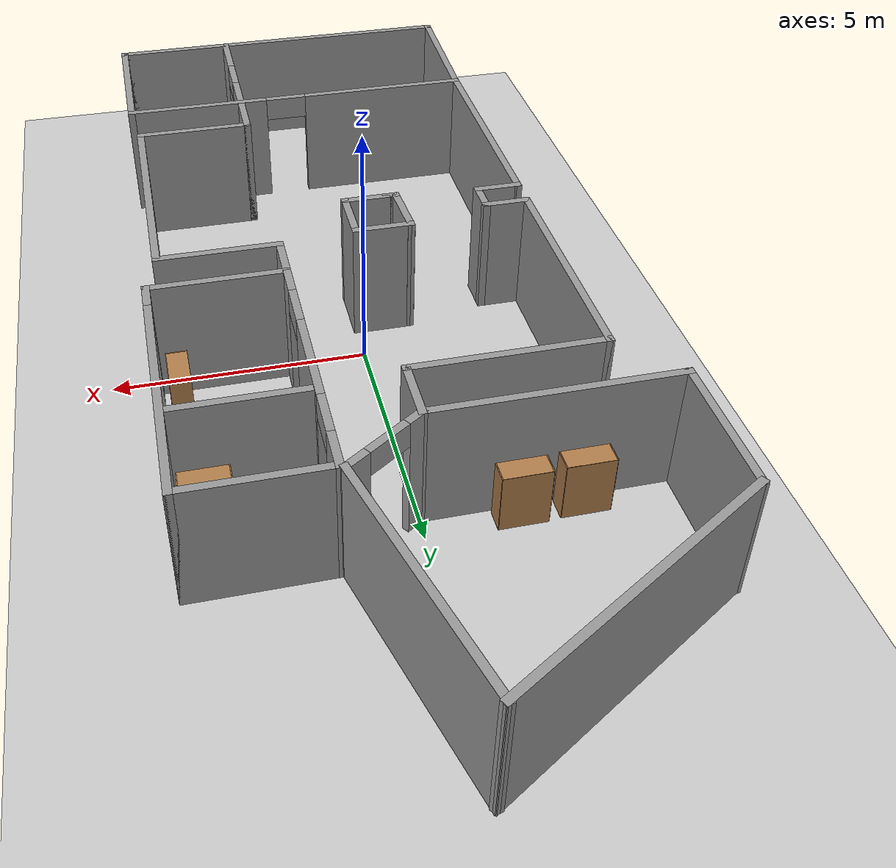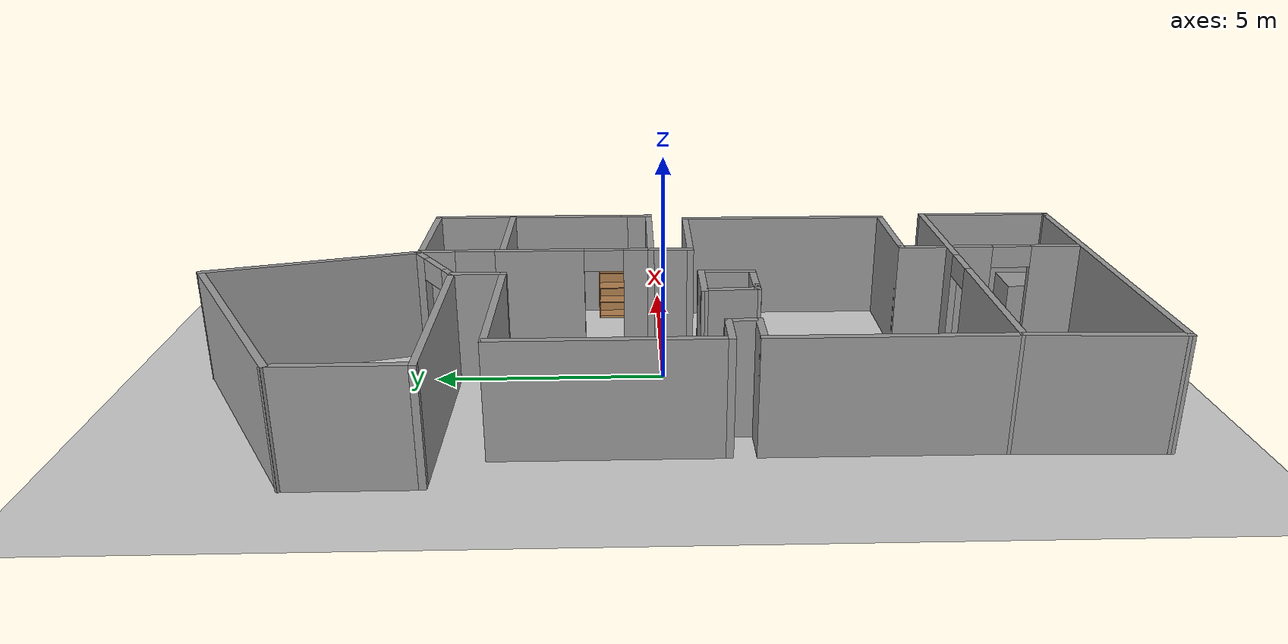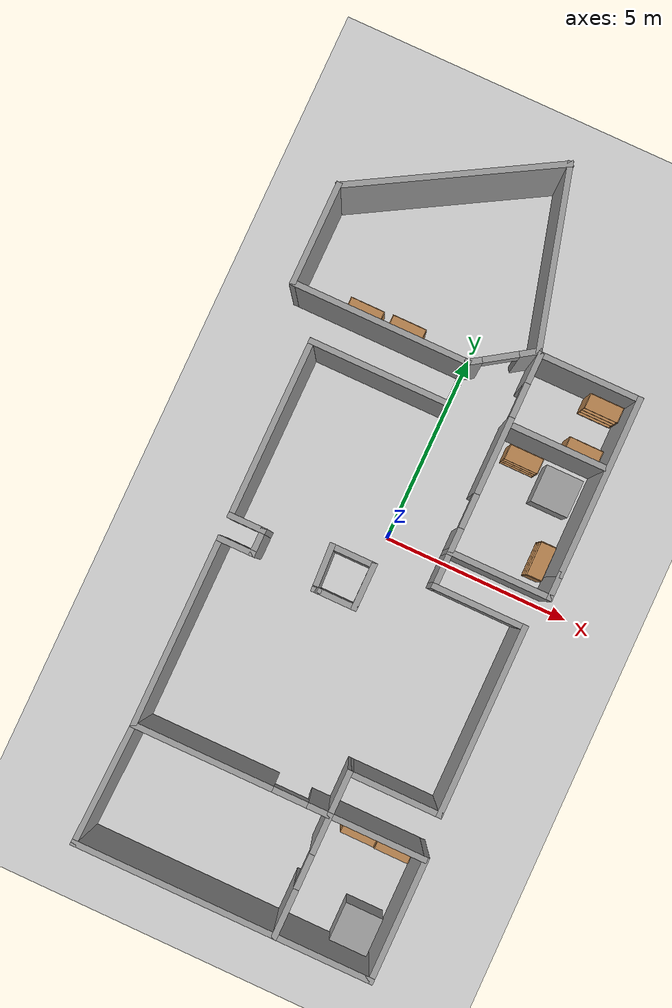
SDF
<sdf version="1.7">
 <world name="default">
  <light name="sun" type="directional">
   <pose>0 0 10 0 -0 0</pose>
   <diffuse>0.8 0.8 0.8 1</diffuse>
   <specular>0.2 0.2 0.2 1</specular>
   <attenuation>
    <range>1000</range>
    <constant>0.9</constant>
    <linear>0.01</linear>
    <quadratic>0.001</quadratic>
   </attenuation>
   <direction>-0.5 0.1 -0.9</direction>
   <spot><inner_angle>0</inner_angle><outer_angle>0</outer_angle><falloff>0</falloff></spot>
  </light>
  <model name="ground_plane">
   <static>1</static>
   <link name="link">
    <collision name="collision">
     <geometry><plane><normal>0 0 1</normal><size>100 100</size></plane></geometry>
     <surface>
      <contact><collide_bitmask>65535</collide_bitmask></contact>
      <friction><ode><mu>100</mu><mu2>50</mu2></ode></friction>
     </surface>
    </collision>
    <visual name="visual">
     <cast_shadows>0</cast_shadows>
     <geometry><plane><normal>0 0 1</normal><size>100 100</size></plane></geometry>
     <material>
      <script><uri>file://media/materials/scripts/gazebo.material</uri><name>Gazebo/Grey</name></script>
     </material>
    </visual>
   </link>
  </model>
  <gravity>0 0 -9.8</gravity>
  <magnetic_field>6e-06 2.3e-05 -4.2e-05</magnetic_field>
  <atmosphere type="adiabatic"/>
  <physics type="ode">
   <max_step_size>0.001</max_step_size>
   <real_time_factor>1</real_time_factor>
   <real_time_update_rate>1000</real_time_update_rate>
  </physics>
  <scene><ambient>0.4 0.4 0.4 1</ambient><background>0.7 0.7 0.7 1</background><shadows>1</shadows></scene>
  <audio><device>default</device></audio>
  <spherical_coordinates>
   <surface_model>EARTH_WGS84</surface_model>
   <latitude_deg>0</latitude_deg>
   <longitude_deg>0</longitude_deg>
   <elevation>0</elevation>
   <heading_deg>0</heading_deg>
  </spherical_coordinates>
  <model name="last_apartment_0">
   <pose>-0.265494 0.12837 0 0 -0 0</pose>
   <link name="Wall_44">
    <collision name="Wall_44_Collision">
     <geometry><box><size>7.75 0.15 2.5</size></box></geometry>
     <pose>0 0 1.25 0 -0 0</pose>
    </collision>
    <visual name="Wall_44_Visual">
     <pose>0 0 1.25 0 -0 0</pose>
     <geometry><box><size>7.75 0.15 2.5</size></box></geometry>
     <material>
      <script><uri>file://media/materials/scripts/gazebo.material</uri><name>Gazebo/Grey</name></script>
      <ambient>1 1 1 1</ambient>
     </material>
     <meta><layer>0</layer></meta>
    </visual>
    <pose>0.357461 -9.83754 0 0 -0 0</pose>
   </link>
   <link name="Wall_45">
    <collision name="Wall_45_Collision">
     <geometry><box><size>0.25 0.15 2.5</size></box></geometry>
     <pose>0 0 1.25 0 -0 0</pose>
    </collision>
    <visual name="Wall_45_Visual">
     <pose>0 0 1.25 0 -0 0</pose>
     <geometry><box><size>0.25 0.15 2.5</size></box></geometry>
     <material>
      <script><uri>file://media/materials/scripts/gazebo.material</uri><name>Gazebo/Grey</name></script>
      <ambient>1 1 1 1</ambient>
     </material>
     <meta><layer>0</layer></meta>
    </visual>
    <pose>4.20746 -9.83754 0 0 -0 0</pose>
   </link>
   <link name="Wall_46">
    <collision name="Wall_46_Collision">
     <geometry><box><size>3.25 0.15 2.5</size></box></geometry>
     <pose>0 0 1.25 0 -0 0</pose>
    </collision>
    <visual name="Wall_46_Visual">
     <pose>0 0 1.25 0 -0 0</pose>
     <geometry><box><size>3.25 0.15 2.5</size></box></geometry>
     <material>
      <script><uri>file://media/materials/scripts/gazebo.material</uri><name>Gazebo/Grey</name></script>
      <ambient>1 1 1 1</ambient>
     </material>
     <meta><layer>0</layer></meta>
    </visual>
    <pose>4.25746 -8.28754 0 0 -0 1.5708</pose>
   </link>
   <link name="Wall_47">
    <pose>0.457461 -6.73754 0 0 -0 3.14159</pose>
    <visual name="Wall_47_Visual_0">
     <pose>-2.302 0 1.25 0 -0 0</pose>
     <geometry><box><size>3.14601 0.15 2.5</size></box></geometry>
     <material>
      <script><uri>file://media/materials/scripts/gazebo.material</uri><name>Gazebo/Grey</name></script>
      <ambient>1 1 1 1</ambient>
     </material>
     <meta><layer>0</layer></meta>
    </visual>
    <collision name="Wall_47_Collision_0">
     <geometry><box><size>3.14601 0.15 2.5</size></box></geometry>
     <pose>-2.302 0 1.25 0 -0 0</pose>
    </collision>
    <visual name="Wall_47_Visual_1">
     <pose>2.023 0 1.25 0 -0 0</pose>
     <geometry><box><size>3.70399 0.15 2.5</size></box></geometry>
     <material>
      <script><uri>file://media/materials/scripts/gazebo.material</uri><name>Gazebo/Grey</name></script>
      <ambient>1 1 1 1</ambient>
     </material>
     <meta><layer>0</layer></meta>
    </visual>
    <collision name="Wall_47_Collision_1">
     <geometry><box><size>3.70399 0.15 2.5</size></box></geometry>
     <pose>2.023 0 1.25 0 -0 0</pose>
    </collision>
    <visual name="Wall_47_Visual_2">
     <pose>-0.278993 0 2.25 0 -0 0</pose>
     <geometry><box><size>0.9 0.15 0.5</size></box></geometry>
     <material>
      <script><uri>file://media/materials/scripts/gazebo.material</uri><name>Gazebo/Grey</name></script>
      <ambient>1 1 1 1</ambient>
     </material>
     <meta><layer>0</layer></meta>
    </visual>
    <collision name="Wall_47_Collision_2">
     <geometry><box><size>0.9 0.15 0.5</size></box></geometry>
     <pose>-0.278993 0 2.25 0 -0 0</pose>
    </collision>
   </link>
   <link name="Wall_48">
    <collision name="Wall_48_Collision">
     <geometry><box><size>3.25161 0.15 2.5</size></box></geometry>
     <pose>0 0 1.25 0 -0 0</pose>
    </collision>
    <visual name="Wall_48_Visual">
     <pose>0 0 1.25 0 -0 0</pose>
     <geometry><box><size>3.25161 0.15 2.5</size></box></geometry>
     <material>
      <script><uri>file://media/materials/scripts/gazebo.material</uri><name>Gazebo/Grey</name></script>
      <ambient>1 1 1 1</ambient>
     </material>
     <meta><layer>0</layer></meta>
    </visual>
    <pose>-3.39254 -8.28754 0 0 -0 -1.60304</pose>
   </link>
   <link name="Wall_50">
    <pose>1.76999 -8.28949 0 0 -0 -1.5708</pose>
    <visual name="Wall_50_Visual_0">
     <pose>-1.0893 0 1.25 0 -0 0</pose>
     <geometry><box><size>1.07141 0.15 2.5</size></box></geometry>
     <material>
      <script><uri>file://media/materials/scripts/gazebo.material</uri><name>Gazebo/Grey</name></script>
      <ambient>1 1 1 1</ambient>
     </material>
     <meta><layer>0</layer></meta>
    </visual>
    <collision name="Wall_50_Collision_0">
     <geometry><box><size>1.07141 0.15 2.5</size></box></geometry>
     <pose>-1.0893 0 1.25 0 -0 0</pose>
    </collision>
    <visual name="Wall_50_Visual_1">
     <pose>0.985703 0 1.25 0 -0 0</pose>
     <geometry><box><size>1.27859 0.15 2.5</size></box></geometry>
     <material>
      <script><uri>file://media/materials/scripts/gazebo.material</uri><name>Gazebo/Grey</name></script>
      <ambient>1 1 1 1</ambient>
     </material>
     <meta><layer>0</layer></meta>
    </visual>
    <collision name="Wall_50_Collision_1">
     <geometry><box><size>1.27859 0.15 2.5</size></box></geometry>
     <pose>0.985703 0 1.25 0 -0 0</pose>
    </collision>
    <visual name="Wall_50_Visual_2">
     <pose>-0.103594 0 2.25 0 -0 0</pose>
     <geometry><box><size>0.9 0.15 0.5</size></box></geometry>
     <material>
      <script><uri>file://media/materials/scripts/gazebo.material</uri><name>Gazebo/Grey</name></script>
      <ambient>1 1 1 1</ambient>
     </material>
     <meta><layer>0</layer></meta>
    </visual>
    <collision name="Wall_50_Collision_2">
     <geometry><box><size>0.9 0.15 0.5</size></box></geometry>
     <pose>-0.103594 0 2.25 0 -0 0</pose>
    </collision>
   </link>
   <link name="Wall_52">
    <collision name="Wall_52_Collision">
     <geometry><box><size>1.25 0.15 2.5</size></box></geometry>
     <pose>0 0 1.25 0 -0 0</pose>
    </collision>
    <visual name="Wall_52_Visual">
     <pose>0 0 1.25 0 -0 0</pose>
     <geometry><box><size>1.25 0.15 2.5</size></box></geometry>
     <material>
      <script><uri>file://media/materials/scripts/gazebo.material</uri><name>Gazebo/Grey</name></script>
      <ambient>1 1 1 1</ambient>
     </material>
     <meta><layer>0</layer></meta>
    </visual>
    <pose>1.76999 -6.18949 0 0 -0 1.5708</pose>
   </link>
   <link name="Wall_53">
    <collision name="Wall_53_Collision">
     <geometry><box><size>2.5 0.15 2.5</size></box></geometry>
     <pose>0 0 1.25 0 -0 0</pose>
    </collision>
    <visual name="Wall_53_Visual">
     <pose>0 0 1.25 0 -0 0</pose>
     <geometry><box><size>2.5 0.15 2.5</size></box></geometry>
     <material>
      <script><uri>file://media/materials/scripts/gazebo.material</uri><name>Gazebo/Grey</name></script>
      <ambient>1 1 1 1</ambient>
     </material>
     <meta><layer>0</layer></meta>
    </visual>
    <pose>2.94499 -5.63949 0 0 -0 0</pose>
   </link>
   <link name="Wall_54">
    <collision name="Wall_54_Collision">
     <geometry><box><size>5 0.15 2.5</size></box></geometry>
     <pose>0 0 1.25 0 -0 0</pose>
    </collision>
    <visual name="Wall_54_Visual">
     <pose>0 0 1.25 0 -0 0</pose>
     <geometry><box><size>5 0.15 2.5</size></box></geometry>
     <material>
      <script><uri>file://media/materials/scripts/gazebo.material</uri><name>Gazebo/Grey</name></script>
      <ambient>1 1 1 1</ambient>
     </material>
     <meta><layer>0</layer></meta>
    </visual>
    <pose>4.11999 -3.21449 0 0 -0 1.5708</pose>
   </link>
   <link name="Wall_55">
    <collision name="Wall_55_Collision">
     <geometry><box><size>2.5 0.15 2.5</size></box></geometry>
     <pose>0 0 1.25 0 -0 0</pose>
    </collision>
    <visual name="Wall_55_Visual">
     <pose>0 0 1.25 0 -0 0</pose>
     <geometry><box><size>2.5 0.15 2.5</size></box></geometry>
     <material>
      <script><uri>file://media/materials/scripts/gazebo.material</uri><name>Gazebo/Grey</name></script>
      <ambient>1 1 1 1</ambient>
     </material>
     <meta><layer>0</layer></meta>
    </visual>
    <pose>2.94499 -0.789487 0 0 -0 3.14159</pose>
   </link>
   <link name="Wall_56">
    <pose>1.76999 2.26051 0 0 -0 1.5708</pose>
    <visual name="Wall_56_Visual_0">
     <pose>-2.32623 0 1.25 0 -0 0</pose>
     <geometry><box><size>1.59753 0.15 2.5</size></box></geometry>
     <material>
      <script><uri>file://media/materials/scripts/gazebo.material</uri><name>Gazebo/Grey</name></script>
      <ambient>1 1 1 1</ambient>
     </material>
     <meta><layer>0</layer></meta>
    </visual>
    <collision name="Wall_56_Collision_0">
     <geometry><box><size>1.59753 0.15 2.5</size></box></geometry>
     <pose>-2.32623 0 1.25 0 -0 0</pose>
    </collision>
    <visual name="Wall_56_Visual_1">
     <pose>0.380475 0 1.25 0 -0 0</pose>
     <geometry><box><size>2.01589 0.15 2.5</size></box></geometry>
     <material>
      <script><uri>file://media/materials/scripts/gazebo.material</uri><name>Gazebo/Grey</name></script>
      <ambient>1 1 1 1</ambient>
     </material>
     <meta><layer>0</layer></meta>
    </visual>
    <collision name="Wall_56_Collision_1">
     <geometry><box><size>2.01589 0.15 2.5</size></box></geometry>
     <pose>0.380475 0 1.25 0 -0 0</pose>
    </collision>
    <visual name="Wall_56_Visual_2">
     <pose>2.70671 0 1.25 0 -0 0</pose>
     <geometry><box><size>0.836582 0.15 2.5</size></box></geometry>
     <material>
      <script><uri>file://media/materials/scripts/gazebo.material</uri><name>Gazebo/Grey</name></script>
      <ambient>1 1 1 1</ambient>
     </material>
     <meta><layer>0</layer></meta>
    </visual>
    <collision name="Wall_56_Collision_2">
     <geometry><box><size>0.836582 0.15 2.5</size></box></geometry>
     <pose>2.70671 0 1.25 0 -0 0</pose>
    </collision>
    <visual name="Wall_56_Visual_3">
     <pose>-1.07747 0 2.25 0 -0 0</pose>
     <geometry><box><size>0.9 0.15 0.5</size></box></geometry>
     <material>
      <script><uri>file://media/materials/scripts/gazebo.material</uri><name>Gazebo/Grey</name></script>
      <ambient>1 1 1 1</ambient>
     </material>
     <meta><layer>0</layer></meta>
    </visual>
    <collision name="Wall_56_Collision_3">
     <geometry><box><size>0.9 0.15 0.5</size></box></geometry>
     <pose>-1.07747 0 2.25 0 -0 0</pose>
    </collision>
    <visual name="Wall_56_Visual_4">
     <pose>1.83842 0 2.25 0 -0 0</pose>
     <geometry><box><size>0.9 0.15 0.5</size></box></geometry>
     <material>
      <script><uri>file://media/materials/scripts/gazebo.material</uri><name>Gazebo/Grey</name></script>
      <ambient>1 1 1 1</ambient>
     </material>
     <meta><layer>0</layer></meta>
    </visual>
    <collision name="Wall_56_Collision_4">
     <geometry><box><size>0.9 0.15 0.5</size></box></geometry>
     <pose>1.83842 0 2.25 0 -0 0</pose>
    </collision>
   </link>
   <link name="Wall_57">
    <collision name="Wall_57_Collision">
     <geometry><box><size>2.75 0.15 2.5</size></box></geometry>
     <pose>0 0 1.25 0 -0 0</pose>
    </collision>
    <visual name="Wall_57_Visual">
     <pose>0 0 1.25 0 -0 0</pose>
     <geometry><box><size>2.75 0.15 2.5</size></box></geometry>
     <material>
      <script><uri>file://media/materials/scripts/gazebo.material</uri><name>Gazebo/Grey</name></script>
      <ambient>1 1 1 1</ambient>
     </material>
     <meta><layer>0</layer></meta>
    </visual>
    <pose>3.06999 5.31051 0 0 -0 0</pose>
   </link>
   <link name="Wall_58">
    <collision name="Wall_58_Collision">
     <geometry><box><size>4.75 0.15 2.5</size></box></geometry>
     <pose>0 0 1.25 0 -0 0</pose>
    </collision>
    <visual name="Wall_58_Visual">
     <pose>0 0 1.25 0 -0 0</pose>
     <geometry><box><size>4.75 0.15 2.5</size></box></geometry>
     <material>
      <script><uri>file://media/materials/scripts/gazebo.material</uri><name>Gazebo/Grey</name></script>
      <ambient>1 1 1 1</ambient>
     </material>
     <meta><layer>0</layer></meta>
    </visual>
    <pose>4.36999 3.01051 0 0 -0 -1.5708</pose>
   </link>
   <link name="Wall_59">
    <collision name="Wall_59_Collision">
     <geometry><box><size>0.75 0.15 2.5</size></box></geometry>
     <pose>0 0 1.25 0 -0 0</pose>
    </collision>
    <visual name="Wall_59_Visual">
     <pose>0 0 1.25 0 -0 0</pose>
     <geometry><box><size>0.75 0.15 2.5</size></box></geometry>
     <material>
      <script><uri>file://media/materials/scripts/gazebo.material</uri><name>Gazebo/Grey</name></script>
      <ambient>1 1 1 1</ambient>
     </material>
     <meta><layer>0</layer></meta>
    </visual>
    <pose>4.36999 0.410513 0 0 -0 -1.5708</pose>
   </link>
   <link name="Wall_60">
    <collision name="Wall_60_Collision">
     <geometry><box><size>2.75 0.15 2.5</size></box></geometry>
     <pose>0 0 1.25 0 -0 0</pose>
    </collision>
    <visual name="Wall_60_Visual">
     <pose>0 0 1.25 0 -0 0</pose>
     <geometry><box><size>2.75 0.15 2.5</size></box></geometry>
     <material>
      <script><uri>file://media/materials/scripts/gazebo.material</uri><name>Gazebo/Grey</name></script>
      <ambient>1 1 1 1</ambient>
     </material>
     <meta><layer>0</layer></meta>
    </visual>
    <pose>3.06999 0.110513 0 0 -0 3.14159</pose>
   </link>
   <link name="Wall_62">
    <collision name="Wall_62_Collision">
     <geometry><box><size>2.5 0.15 2.5</size></box></geometry>
     <pose>0 0 1.25 0 -0 0</pose>
    </collision>
    <visual name="Wall_62_Visual">
     <pose>0 0 1.25 0 -0 0</pose>
     <geometry><box><size>2.5 0.15 2.5</size></box></geometry>
     <material>
      <script><uri>file://media/materials/scripts/gazebo.material</uri><name>Gazebo/Grey</name></script>
      <ambient>1 1 1 1</ambient>
     </material>
     <meta><layer>0</layer></meta>
    </visual>
    <pose>3.09973 3.47642 0 0 -0 3.14159</pose>
   </link>
   <link name="Wall_64">
    <collision name="Wall_64_Collision">
     <geometry><box><size>5 0.15 2.5</size></box></geometry>
     <pose>0 0 1.25 0 -0 0</pose>
    </collision>
    <visual name="Wall_64_Visual">
     <pose>0 0 1.25 0 -0 0</pose>
     <geometry><box><size>5 0.15 2.5</size></box></geometry>
     <material>
      <script><uri>file://media/materials/scripts/gazebo.material</uri><name>Gazebo/Grey</name></script>
      <ambient>1 1 1 1</ambient>
     </material>
     <meta><layer>0</layer></meta>
    </visual>
    <pose>-3.34254 -4.31254 0 0 -0 1.5708</pose>
   </link>
   <link name="Wall_65">
    <collision name="Wall_65_Collision">
     <geometry><box><size>1 0.15 2.5</size></box></geometry>
     <pose>0 0 1.25 0 -0 0</pose>
    </collision>
    <visual name="Wall_65_Visual">
     <pose>0 0 1.25 0 -0 0</pose>
     <geometry><box><size>1 0.15 2.5</size></box></geometry>
     <material>
      <script><uri>file://media/materials/scripts/gazebo.material</uri><name>Gazebo/Grey</name></script>
      <ambient>1 1 1 1</ambient>
     </material>
     <meta><layer>0</layer></meta>
    </visual>
    <pose>-2.91754 -1.88754 0 0 -0 0</pose>
   </link>
   <link name="Wall_66">
    <collision name="Wall_66_Collision">
     <geometry><box><size>0.75 0.15 2.5</size></box></geometry>
     <pose>0 0 1.25 0 -0 0</pose>
    </collision>
    <visual name="Wall_66_Visual">
     <pose>0 0 1.25 0 -0 0</pose>
     <geometry><box><size>0.75 0.15 2.5</size></box></geometry>
     <material>
      <script><uri>file://media/materials/scripts/gazebo.material</uri><name>Gazebo/Grey</name></script>
      <ambient>1 1 1 1</ambient>
     </material>
     <meta><layer>0</layer></meta>
    </visual>
    <pose>-2.49254 -1.58754 0 0 -0 1.5708</pose>
   </link>
   <link name="Wall_67">
    <collision name="Wall_67_Collision">
     <geometry><box><size>1 0.15 2.5</size></box></geometry>
     <pose>0 0 1.25 0 -0 0</pose>
    </collision>
    <visual name="Wall_67_Visual">
     <pose>0 0 1.25 0 -0 0</pose>
     <geometry><box><size>1 0.15 2.5</size></box></geometry>
     <material>
      <script><uri>file://media/materials/scripts/gazebo.material</uri><name>Gazebo/Grey</name></script>
      <ambient>1 1 1 1</ambient>
     </material>
     <meta><layer>0</layer></meta>
    </visual>
    <pose>-2.91754 -1.28754 0 0 -0 3.14159</pose>
   </link>
   <link name="Wall_68">
    <collision name="Wall_68_Collision">
     <geometry><box><size>4.75 0.15 2.5</size></box></geometry>
     <pose>0 0 1.25 0 -0 0</pose>
    </collision>
    <visual name="Wall_68_Visual">
     <pose>0 0 1.25 0 -0 0</pose>
     <geometry><box><size>4.75 0.15 2.5</size></box></geometry>
     <material>
      <script><uri>file://media/materials/scripts/gazebo.material</uri><name>Gazebo/Grey</name></script>
      <ambient>1 1 1 1</ambient>
     </material>
     <meta><layer>0</layer></meta>
    </visual>
    <pose>-3.34254 1.01246 0 0 -0 1.5708</pose>
   </link>
   <link name="Wall_69">
    <collision name="Wall_69_Collision">
     <geometry><box><size>3.75 0.15 2.5</size></box></geometry>
     <pose>0 0 1.25 0 -0 0</pose>
    </collision>
    <visual name="Wall_69_Visual">
     <pose>0 0 1.25 0 -0 0</pose>
     <geometry><box><size>3.75 0.15 2.5</size></box></geometry>
     <material>
      <script><uri>file://media/materials/scripts/gazebo.material</uri><name>Gazebo/Grey</name></script>
      <ambient>1 1 1 1</ambient>
     </material>
     <meta><layer>0</layer></meta>
    </visual>
    <pose>-1.54254 3.31246 0 0 -0 0</pose>
   </link>
   <link name="Wall_70">
    <collision name="Wall_70_Collision">
     <geometry><box><size>1.25 0.15 2.5</size></box></geometry>
     <pose>0 0 1.25 0 -0 0</pose>
    </collision>
    <visual name="Wall_70_Visual">
     <pose>0 0 1.25 0 -0 0</pose>
     <geometry><box><size>1.25 0.15 2.5</size></box></geometry>
     <material>
      <script><uri>file://media/materials/scripts/gazebo.material</uri><name>Gazebo/Grey</name></script>
      <ambient>1 1 1 1</ambient>
     </material>
     <meta><layer>0</layer></meta>
    </visual>
    <pose>0.257461 3.86246 0 0 -0 1.5708</pose>
   </link>
   <link name="Wall_71">
    <collision name="Wall_71_Collision">
     <geometry><box><size>4.75 0.15 2.5</size></box></geometry>
     <pose>0 0 1.25 0 -0 0</pose>
    </collision>
    <visual name="Wall_71_Visual">
     <pose>0 0 1.25 0 -0 0</pose>
     <geometry><box><size>4.75 0.15 2.5</size></box></geometry>
     <material>
      <script><uri>file://media/materials/scripts/gazebo.material</uri><name>Gazebo/Grey</name></script>
      <ambient>1 1 1 1</ambient>
     </material>
     <meta><layer>0</layer></meta>
    </visual>
    <pose>-2.04254 4.41246 0 0 -0 3.14159</pose>
   </link>
   <link name="Wall_72">
    <collision name="Wall_72_Collision">
     <geometry><box><size>2.75 0.15 2.5</size></box></geometry>
     <pose>0 0 1.25 0 -0 0</pose>
    </collision>
    <visual name="Wall_72_Visual">
     <pose>0 0 1.25 0 -0 0</pose>
     <geometry><box><size>2.75 0.15 2.5</size></box></geometry>
     <material>
      <script><uri>file://media/materials/scripts/gazebo.material</uri><name>Gazebo/Grey</name></script>
      <ambient>1 1 1 1</ambient>
     </material>
     <meta><layer>0</layer></meta>
    </visual>
    <pose>-4.34254 5.71246 0 0 -0 1.5708</pose>
   </link>
   <link name="Wall_73">
    <collision name="Wall_73_Collision">
     <geometry><box><size>5.75 0.15 2.5</size></box></geometry>
     <pose>0 0 1.25 0 -0 0</pose>
    </collision>
    <visual name="Wall_73_Visual">
     <pose>0 0 1.25 0 -0 0</pose>
     <geometry><box><size>5.75 0.15 2.5</size></box></geometry>
     <material>
      <script><uri>file://media/materials/scripts/gazebo.material</uri><name>Gazebo/Grey</name></script>
      <ambient>1 1 1 1</ambient>
     </material>
     <meta><layer>0</layer></meta>
    </visual>
    <pose>-1.91767 8.41246 0 0 -0 0.523599</pose>
   </link>
   <link name="Wall_74">
    <collision name="Wall_74_Collision">
     <geometry><box><size>4.75 0.15 2.5</size></box></geometry>
     <pose>0 0 1.25 0 -0 0</pose>
    </collision>
    <visual name="Wall_74_Visual">
     <pose>0 0 1.25 0 -0 0</pose>
     <geometry><box><size>4.75 0.15 2.5</size></box></geometry>
     <material>
      <script><uri>file://media/materials/scripts/gazebo.material</uri><name>Gazebo/Grey</name></script>
      <ambient>1 1 1 1</ambient>
     </material>
     <meta><layer>0</layer></meta>
    </visual>
    <pose>1.10249 7.59084 0 0 -0 -1.309</pose>
   </link>
   <link name="Wall_76">
    <pose>0.977616 4.89084 0 0 -0 0.586335</pose>
    <visual name="Wall_76_Visual_0">
     <pose>-0.72663 0 1.25 0 -0 0</pose>
     <geometry><box><size>0.425858 0.15 2.5</size></box></geometry>
     <material>
      <script><uri>file://media/materials/scripts/gazebo.material</uri><name>Gazebo/Grey</name></script>
      <ambient>1 1 1 1</ambient>
     </material>
     <meta><layer>0</layer></meta>
    </visual>
    <collision name="Wall_76_Collision_0">
     <geometry><box><size>0.425858 0.15 2.5</size></box></geometry>
     <pose>-0.72663 0 1.25 0 -0 0</pose>
    </collision>
    <visual name="Wall_76_Visual_1">
     <pose>0.662929 0 1.25 0 -0 0</pose>
     <geometry><box><size>0.553259 0.15 2.5</size></box></geometry>
     <material>
      <script><uri>file://media/materials/scripts/gazebo.material</uri><name>Gazebo/Grey</name></script>
      <ambient>1 1 1 1</ambient>
     </material>
     <meta><layer>0</layer></meta>
    </visual>
    <collision name="Wall_76_Collision_1">
     <geometry><box><size>0.553259 0.15 2.5</size></box></geometry>
     <pose>0.662929 0 1.25 0 -0 0</pose>
    </collision>
    <visual name="Wall_76_Visual_2">
     <pose>-0.0637 0 2.25 0 -0 0</pose>
     <geometry><box><size>0.9 0.15 0.5</size></box></geometry>
     <material>
      <script><uri>file://media/materials/scripts/gazebo.material</uri><name>Gazebo/Grey</name></script>
      <ambient>1 1 1 1</ambient>
     </material>
     <meta><layer>0</layer></meta>
    </visual>
    <collision name="Wall_76_Collision_2">
     <geometry><box><size>0.9 0.15 0.5</size></box></geometry>
     <pose>-0.0637 0 2.25 0 -0 0</pose>
    </collision>
   </link>
   <link name="Wall_78">
    <collision name="Wall_78_Collision">
     <geometry><box><size>1.25 0.15 2.5</size></box></geometry>
     <pose>0 0 1.25 0 -0 0</pose>
    </collision>
    <visual name="Wall_78_Visual">
     <pose>0 0 1.25 0 -0 0</pose>
     <geometry><box><size>1.25 0.15 2.5</size></box></geometry>
     <material>
      <script><uri>file://media/materials/scripts/gazebo.material</uri><name>Gazebo/Grey</name></script>
      <ambient>1 1 1 1</ambient>
     </material>
     <meta><layer>0</layer></meta>
    </visual>
    <pose>-0.299384 -0.940352 0 0 -0 0</pose>
   </link>
   <link name="Wall_79">
    <collision name="Wall_79_Collision">
     <geometry><box><size>1.25 0.15 2.5</size></box></geometry>
     <pose>0 0 1.25 0 -0 0</pose>
    </collision>
    <visual name="Wall_79_Visual">
     <pose>0 0 1.25 0 -0 0</pose>
     <geometry><box><size>1.25 0.15 2.5</size></box></geometry>
     <material>
      <script><uri>file://media/materials/scripts/gazebo.material</uri><name>Gazebo/Grey</name></script>
      <ambient>1 1 1 1</ambient>
     </material>
     <meta><layer>0</layer></meta>
    </visual>
    <pose>0.250616 -1.49035 0 0 -0 -1.5708</pose>
   </link>
   <link name="Wall_80">
    <collision name="Wall_80_Collision">
     <geometry><box><size>1 0.15 2.5</size></box></geometry>
     <pose>0 0 1.25 0 -0 0</pose>
    </collision>
    <visual name="Wall_80_Visual">
     <pose>0 0 1.25 0 -0 0</pose>
     <geometry><box><size>1 0.15 2.5</size></box></geometry>
     <material>
      <script><uri>file://media/materials/scripts/gazebo.material</uri><name>Gazebo/Grey</name></script>
      <ambient>1 1 1 1</ambient>
     </material>
     <meta><layer>0</layer></meta>
    </visual>
    <pose>-0.174384 -2.04035 0 0 -0 3.14159</pose>
   </link>
   <link name="Wall_81">
    <collision name="Wall_81_Collision">
     <geometry><box><size>0.25 0.15 2.5</size></box></geometry>
     <pose>0 0 1.25 0 -0 0</pose>
    </collision>
    <visual name="Wall_81_Visual">
     <pose>0 0 1.25 0 -0 0</pose>
     <geometry><box><size>0.25 0.15 2.5</size></box></geometry>
     <material>
      <script><uri>file://media/materials/scripts/gazebo.material</uri><name>Gazebo/Grey</name></script>
      <ambient>1 1 1 1</ambient>
     </material>
     <meta><layer>0</layer></meta>
    </visual>
    <pose>-0.649384 -2.04035 0 0 -0 3.14159</pose>
   </link>
   <link name="Wall_82">
    <collision name="Wall_82_Collision">
     <geometry><box><size>0.25 0.15 2.5</size></box></geometry>
     <pose>0 0 1.25 0 -0 0</pose>
    </collision>
    <visual name="Wall_82_Visual">
     <pose>0 0 1.25 0 -0 0</pose>
     <geometry><box><size>0.25 0.15 2.5</size></box></geometry>
     <material>
      <script><uri>file://media/materials/scripts/gazebo.material</uri><name>Gazebo/Grey</name></script>
      <ambient>1 1 1 1</ambient>
     </material>
     <meta><layer>0</layer></meta>
    </visual>
    <pose>-0.749384 -2.04035 0 0 -0 3.14159</pose>
   </link>
   <link name="Wall_83">
    <collision name="Wall_83_Collision">
     <geometry><box><size>1.25114 0.15 2.5</size></box></geometry>
     <pose>0 0 1.25 0 -0 0</pose>
    </collision>
    <visual name="Wall_83_Visual">
     <pose>0 0 1.25 0 -0 0</pose>
     <geometry><box><size>1.25114 0.15 2.5</size></box></geometry>
     <material>
      <script><uri>file://media/materials/scripts/gazebo.material</uri><name>Gazebo/Grey</name></script>
      <ambient>1 1 1 1</ambient>
     </material>
     <meta><layer>0</layer></meta>
    </visual>
    <pose>-0.824384 -1.49035 0 0 -0 1.61622</pose>
   </link>
   <static>1</static>
  </model>
  <model name="bookshelf">
   <static>1</static>
   <link name="link">
    <inertial><mass>1</mass></inertial>
    <collision name="back">
     <pose>0 0.005 0.6 0 -0 0</pose>
     <geometry><box><size>0.9 0.01 1.2</size></box></geometry>
    </collision>
    <visual name="visual1">
     <pose>0 0.005 0.6 0 -0 0</pose>
     <geometry><box><size>0.9 0.01 1.2</size></box></geometry>
     <material>
      <script><uri>file://media/materials/scripts/gazebo.material</uri><name>Gazebo/Wood</name></script>
     </material>
    </visual>
    <collision name="left_side">
     <pose>0.45 -0.195 0.6 0 -0 0</pose>
     <geometry><box><size>0.02 0.4 1.2</size></box></geometry>
    </collision>
    <visual name="visual2">
     <pose>0.45 -0.195 0.6 0 -0 0</pose>
     <geometry><box><size>0.02 0.4 1.2</size></box></geometry>
     <material>
      <script><uri>file://media/materials/scripts/gazebo.material</uri><name>Gazebo/Wood</name></script>
     </material>
    </visual>
    <collision name="right_side">
     <pose>-0.45 -0.195 0.6 0 -0 0</pose>
     <geometry><box><size>0.02 0.4 1.2</size></box></geometry>
    </collision>
    <visual name="visual3">
     <pose>-0.45 -0.195 0.6 0 -0 0</pose>
     <geometry><box><size>0.02 0.4 1.2</size></box></geometry>
     <material>
      <script><uri>file://media/materials/scripts/gazebo.material</uri><name>Gazebo/Wood</name></script>
     </material>
    </visual>
    <collision name="bottom">
     <pose>0 -0.195 0.03 0 -0 0</pose>
     <geometry><box><size>0.88 0.4 0.06</size></box></geometry>
    </collision>
    <visual name="visual4">
     <pose>0 -0.195 0.03 0 -0 0</pose>
     <geometry><box><size>0.88 0.4 0.06</size></box></geometry>
     <material>
      <script><uri>file://media/materials/scripts/gazebo.material</uri><name>Gazebo/Wood</name></script>
     </material>
    </visual>
    <collision name="top">
     <pose>0 -0.195 1.19 0 -0 0</pose>
     <geometry><box><size>0.88 0.4 0.02</size></box></geometry>
    </collision>
    <visual name="visual5">
     <pose>0 -0.195 1.19 0 -0 0</pose>
     <geometry><box><size>0.88 0.4 0.02</size></box></geometry>
     <material>
      <script><uri>file://media/materials/scripts/gazebo.material</uri><name>Gazebo/Wood</name></script>
     </material>
    </visual>
    <collision name="low_shelf">
     <pose>0 -0.195 0.43 0 -0 0</pose>
     <geometry><box><size>0.88 0.4 0.02</size></box></geometry>
    </collision>
    <visual name="visual6">
     <pose>0 -0.195 0.43 0 -0 0</pose>
     <geometry><box><size>0.88 0.4 0.02</size></box></geometry>
     <material>
      <script><uri>file://media/materials/scripts/gazebo.material</uri><name>Gazebo/Wood</name></script>
     </material>
    </visual>
    <collision name="high_shelf">
     <pose>0 -0.195 0.8 0 -0 0</pose>
     <geometry><box><size>0.88 0.4 0.02</size></box></geometry>
    </collision>
    <visual name="visual7">
     <pose>0 -0.195 0.8 0 -0 0</pose>
     <geometry><box><size>0.88 0.4 0.02</size></box></geometry>
     <material>
      <script><uri>file://media/materials/scripts/gazebo.material</uri><name>Gazebo/Wood</name></script>
     </material>
    </visual>
   </link>
   <pose>2.40885 -6.66535 0 0 -0 0</pose>
  </model>
  <model name="bookshelf_clone">
   <static>1</static>
   <link name="link">
    <inertial><mass>1</mass></inertial>
    <collision name="back">
     <pose>0 0.005 0.6 0 -0 0</pose>
     <geometry><box><size>0.9 0.01 1.2</size></box></geometry>
    </collision>
    <visual name="visual1">
     <pose>0 0.005 0.6 0 -0 0</pose>
     <geometry><box><size>0.9 0.01 1.2</size></box></geometry>
     <material>
      <script><uri>file://media/materials/scripts/gazebo.material</uri><name>Gazebo/Wood</name></script>
     </material>
    </visual>
    <collision name="left_side">
     <pose>0.45 -0.195 0.6 0 -0 0</pose>
     <geometry><box><size>0.02 0.4 1.2</size></box></geometry>
    </collision>
    <visual name="visual2">
     <pose>0.45 -0.195 0.6 0 -0 0</pose>
     <geometry><box><size>0.02 0.4 1.2</size></box></geometry>
     <material>
      <script><uri>file://media/materials/scripts/gazebo.material</uri><name>Gazebo/Wood</name></script>
     </material>
    </visual>
    <collision name="right_side">
     <pose>-0.45 -0.195 0.6 0 -0 0</pose>
     <geometry><box><size>0.02 0.4 1.2</size></box></geometry>
    </collision>
    <visual name="visual3">
     <pose>-0.45 -0.195 0.6 0 -0 0</pose>
     <geometry><box><size>0.02 0.4 1.2</size></box></geometry>
     <material>
      <script><uri>file://media/materials/scripts/gazebo.material</uri><name>Gazebo/Wood</name></script>
     </material>
    </visual>
    <collision name="bottom">
     <pose>0 -0.195 0.03 0 -0 0</pose>
     <geometry><box><size>0.88 0.4 0.06</size></box></geometry>
    </collision>
    <visual name="visual4">
     <pose>0 -0.195 0.03 0 -0 0</pose>
     <geometry><box><size>0.88 0.4 0.06</size></box></geometry>
     <material>
      <script><uri>file://media/materials/scripts/gazebo.material</uri><name>Gazebo/Wood</name></script>
     </material>
    </visual>
    <collision name="top">
     <pose>0 -0.195 1.19 0 -0 0</pose>
     <geometry><box><size>0.88 0.4 0.02</size></box></geometry>
    </collision>
    <visual name="visual5">
     <pose>0 -0.195 1.19 0 -0 0</pose>
     <geometry><box><size>0.88 0.4 0.02</size></box></geometry>
     <material>
      <script><uri>file://media/materials/scripts/gazebo.material</uri><name>Gazebo/Wood</name></script>
     </material>
    </visual>
    <collision name="low_shelf">
     <pose>0 -0.195 0.43 0 -0 0</pose>
     <geometry><box><size>0.88 0.4 0.02</size></box></geometry>
    </collision>
    <visual name="visual6">
     <pose>0 -0.195 0.43 0 -0 0</pose>
     <geometry><box><size>0.88 0.4 0.02</size></box></geometry>
     <material>
      <script><uri>file://media/materials/scripts/gazebo.material</uri><name>Gazebo/Wood</name></script>
     </material>
    </visual>
    <collision name="high_shelf">
     <pose>0 -0.195 0.8 0 -0 0</pose>
     <geometry><box><size>0.88 0.4 0.02</size></box></geometry>
    </collision>
    <visual name="visual7">
     <pose>0 -0.195 0.8 0 -0 0</pose>
     <geometry><box><size>0.88 0.4 0.02</size></box></geometry>
     <material>
      <script><uri>file://media/materials/scripts/gazebo.material</uri><name>Gazebo/Wood</name></script>
     </material>
    </visual>
   </link>
   <pose>3.33474 -6.68197 0 0 -0 0</pose>
  </model>
  <model name="unit_box">
   <pose>3.32389 -9.08656 0.499995 0 -1e-05 0</pose>
   <link name="link">
    <inertial>
     <mass>1</mass>
     <inertia>
      <ixx>0.166667</ixx>
      <ixy>0</ixy>
      <ixz>0</ixz>
      <iyy>0.166667</iyy>
      <iyz>0</iyz>
      <izz>0.166667</izz>
     </inertia>
    </inertial>
    <collision name="collision"><geometry><box><size>1 1 1</size></box></geometry></collision>
    <visual name="visual">
     <geometry><box><size>1 1 1</size></box></geometry>
     <material>
      <script><name>Gazebo/Grey</name><uri>file://media/materials/scripts/gazebo.material</uri></script>
     </material>
    </visual>
   </link>
  </model>
  <model name="unit_box_0">
   <pose>3.36011 2.79744 0.499995 0 -1e-05 0</pose>
   <link name="link">
    <inertial>
     <mass>1</mass>
     <inertia>
      <ixx>0.166667</ixx>
      <ixy>0</ixy>
      <ixz>0</ixz>
      <iyy>0.166667</iyy>
      <iyz>0</iyz>
      <izz>0.166667</izz>
     </inertia>
    </inertial>
    <collision name="collision"><geometry><box><size>1 1 1</size></box></geometry></collision>
    <visual name="visual">
     <geometry><box><size>1 1 1</size></box></geometry>
     <material>
      <script><name>Gazebo/Grey</name><uri>file://media/materials/scripts/gazebo.material</uri></script>
     </material>
    </visual>
   </link>
  </model>
  <model name="bookshelf_clone_0">
   <static>1</static>
   <link name="link">
    <inertial><mass>1</mass></inertial>
    <collision name="back">
     <pose>0 0.005 0.6 0 -0 0</pose>
     <geometry><box><size>0.9 0.01 1.2</size></box></geometry>
    </collision>
    <visual name="visual1">
     <pose>0 0.005 0.6 0 -0 0</pose>
     <geometry><box><size>0.9 0.01 1.2</size></box></geometry>
     <material>
      <script><uri>file://media/materials/scripts/gazebo.material</uri><name>Gazebo/Wood</name></script>
     </material>
    </visual>
    <collision name="left_side">
     <pose>0.45 -0.195 0.6 0 -0 0</pose>
     <geometry><box><size>0.02 0.4 1.2</size></box></geometry>
    </collision>
    <visual name="visual2">
     <pose>0.45 -0.195 0.6 0 -0 0</pose>
     <geometry><box><size>0.02 0.4 1.2</size></box></geometry>
     <material>
      <script><uri>file://media/materials/scripts/gazebo.material</uri><name>Gazebo/Wood</name></script>
     </material>
    </visual>
    <collision name="right_side">
     <pose>-0.45 -0.195 0.6 0 -0 0</pose>
     <geometry><box><size>0.02 0.4 1.2</size></box></geometry>
    </collision>
    <visual name="visual3">
     <pose>-0.45 -0.195 0.6 0 -0 0</pose>
     <geometry><box><size>0.02 0.4 1.2</size></box></geometry>
     <material>
      <script><uri>file://media/materials/scripts/gazebo.material</uri><name>Gazebo/Wood</name></script>
     </material>
    </visual>
    <collision name="bottom">
     <pose>0 -0.195 0.03 0 -0 0</pose>
     <geometry><box><size>0.88 0.4 0.06</size></box></geometry>
    </collision>
    <visual name="visual4">
     <pose>0 -0.195 0.03 0 -0 0</pose>
     <geometry><box><size>0.88 0.4 0.06</size></box></geometry>
     <material>
      <script><uri>file://media/materials/scripts/gazebo.material</uri><name>Gazebo/Wood</name></script>
     </material>
    </visual>
    <collision name="top">
     <pose>0 -0.195 1.19 0 -0 0</pose>
     <geometry><box><size>0.88 0.4 0.02</size></box></geometry>
    </collision>
    <visual name="visual5">
     <pose>0 -0.195 1.19 0 -0 0</pose>
     <geometry><box><size>0.88 0.4 0.02</size></box></geometry>
     <material>
      <script><uri>file://media/materials/scripts/gazebo.material</uri><name>Gazebo/Wood</name></script>
     </material>
    </visual>
    <collision name="low_shelf">
     <pose>0 -0.195 0.43 0 -0 0</pose>
     <geometry><box><size>0.88 0.4 0.02</size></box></geometry>
    </collision>
    <visual name="visual6">
     <pose>0 -0.195 0.43 0 -0 0</pose>
     <geometry><box><size>0.88 0.4 0.02</size></box></geometry>
     <material>
      <script><uri>file://media/materials/scripts/gazebo.material</uri><name>Gazebo/Wood</name></script>
     </material>
    </visual>
    <collision name="high_shelf">
     <pose>0 -0.195 0.8 0 -0 0</pose>
     <geometry><box><size>0.88 0.4 0.02</size></box></geometry>
    </collision>
    <visual name="visual7">
     <pose>0 -0.195 0.8 0 -0 0</pose>
     <geometry><box><size>0.88 0.4 0.02</size></box></geometry>
     <material>
      <script><uri>file://media/materials/scripts/gazebo.material</uri><name>Gazebo/Wood</name></script>
     </material>
    </visual>
   </link>
   <pose>2.26597 3.3548 0 0 -0 0</pose>
  </model>
  <model name="bookshelf_clone_0_clone">
   <static>1</static>
   <link name="link">
    <inertial><mass>1</mass></inertial>
    <collision name="back">
     <pose>0 0.005 0.6 0 -0 0</pose>
     <geometry><box><size>0.9 0.01 1.2</size></box></geometry>
    </collision>
    <visual name="visual1">
     <pose>0 0.005 0.6 0 -0 0</pose>
     <geometry><box><size>0.9 0.01 1.2</size></box></geometry>
     <material>
      <script><uri>file://media/materials/scripts/gazebo.material</uri><name>Gazebo/Wood</name></script>
     </material>
    </visual>
    <collision name="left_side">
     <pose>0.45 -0.195 0.6 0 -0 0</pose>
     <geometry><box><size>0.02 0.4 1.2</size></box></geometry>
    </collision>
    <visual name="visual2">
     <pose>0.45 -0.195 0.6 0 -0 0</pose>
     <geometry><box><size>0.02 0.4 1.2</size></box></geometry>
     <material>
      <script><uri>file://media/materials/scripts/gazebo.material</uri><name>Gazebo/Wood</name></script>
     </material>
    </visual>
    <collision name="right_side">
     <pose>-0.45 -0.195 0.6 0 -0 0</pose>
     <geometry><box><size>0.02 0.4 1.2</size></box></geometry>
    </collision>
    <visual name="visual3">
     <pose>-0.45 -0.195 0.6 0 -0 0</pose>
     <geometry><box><size>0.02 0.4 1.2</size></box></geometry>
     <material>
      <script><uri>file://media/materials/scripts/gazebo.material</uri><name>Gazebo/Wood</name></script>
     </material>
    </visual>
    <collision name="bottom">
     <pose>0 -0.195 0.03 0 -0 0</pose>
     <geometry><box><size>0.88 0.4 0.06</size></box></geometry>
    </collision>
    <visual name="visual4">
     <pose>0 -0.195 0.03 0 -0 0</pose>
     <geometry><box><size>0.88 0.4 0.06</size></box></geometry>
     <material>
      <script><uri>file://media/materials/scripts/gazebo.material</uri><name>Gazebo/Wood</name></script>
     </material>
    </visual>
    <collision name="top">
     <pose>0 -0.195 1.19 0 -0 0</pose>
     <geometry><box><size>0.88 0.4 0.02</size></box></geometry>
    </collision>
    <visual name="visual5">
     <pose>0 -0.195 1.19 0 -0 0</pose>
     <geometry><box><size>0.88 0.4 0.02</size></box></geometry>
     <material>
      <script><uri>file://media/materials/scripts/gazebo.material</uri><name>Gazebo/Wood</name></script>
     </material>
    </visual>
    <collision name="low_shelf">
     <pose>0 -0.195 0.43 0 -0 0</pose>
     <geometry><box><size>0.88 0.4 0.02</size></box></geometry>
    </collision>
    <visual name="visual6">
     <pose>0 -0.195 0.43 0 -0 0</pose>
     <geometry><box><size>0.88 0.4 0.02</size></box></geometry>
     <material>
      <script><uri>file://media/materials/scripts/gazebo.material</uri><name>Gazebo/Wood</name></script>
     </material>
    </visual>
    <collision name="high_shelf">
     <pose>0 -0.195 0.8 0 -0 0</pose>
     <geometry><box><size>0.88 0.4 0.02</size></box></geometry>
    </collision>
    <visual name="visual7">
     <pose>0 -0.195 0.8 0 -0 0</pose>
     <geometry><box><size>0.88 0.4 0.02</size></box></geometry>
     <material>
      <script><uri>file://media/materials/scripts/gazebo.material</uri><name>Gazebo/Wood</name></script>
     </material>
    </visual>
   </link>
   <pose>3.90044 1.0336 0 0 0 -1.56476</pose>
  </model>
  <model name="bookshelf_0">
   <static>1</static>
   <link name="link">
    <inertial><mass>1</mass></inertial>
    <collision name="back">
     <pose>0 0.005 0.6 0 -0 0</pose>
     <geometry><box><size>0.9 0.01 1.2</size></box></geometry>
    </collision>
    <visual name="visual1">
     <pose>0 0.005 0.6 0 -0 0</pose>
     <geometry><box><size>0.9 0.01 1.2</size></box></geometry>
     <material>
      <script><uri>file://media/materials/scripts/gazebo.material</uri><name>Gazebo/Wood</name></script>
     </material>
    </visual>
    <collision name="left_side">
     <pose>0.45 -0.195 0.6 0 -0 0</pose>
     <geometry><box><size>0.02 0.4 1.2</size></box></geometry>
    </collision>
    <visual name="visual2">
     <pose>0.45 -0.195 0.6 0 -0 0</pose>
     <geometry><box><size>0.02 0.4 1.2</size></box></geometry>
     <material>
      <script><uri>file://media/materials/scripts/gazebo.material</uri><name>Gazebo/Wood</name></script>
     </material>
    </visual>
    <collision name="right_side">
     <pose>-0.45 -0.195 0.6 0 -0 0</pose>
     <geometry><box><size>0.02 0.4 1.2</size></box></geometry>
    </collision>
    <visual name="visual3">
     <pose>-0.45 -0.195 0.6 0 -0 0</pose>
     <geometry><box><size>0.02 0.4 1.2</size></box></geometry>
     <material>
      <script><uri>file://media/materials/scripts/gazebo.material</uri><name>Gazebo/Wood</name></script>
     </material>
    </visual>
    <collision name="bottom">
     <pose>0 -0.195 0.03 0 -0 0</pose>
     <geometry><box><size>0.88 0.4 0.06</size></box></geometry>
    </collision>
    <visual name="visual4">
     <pose>0 -0.195 0.03 0 -0 0</pose>
     <geometry><box><size>0.88 0.4 0.06</size></box></geometry>
     <material>
      <script><uri>file://media/materials/scripts/gazebo.material</uri><name>Gazebo/Wood</name></script>
     </material>
    </visual>
    <collision name="top">
     <pose>0 -0.195 1.19 0 -0 0</pose>
     <geometry><box><size>0.88 0.4 0.02</size></box></geometry>
    </collision>
    <visual name="visual5">
     <pose>0 -0.195 1.19 0 -0 0</pose>
     <geometry><box><size>0.88 0.4 0.02</size></box></geometry>
     <material>
      <script><uri>file://media/materials/scripts/gazebo.material</uri><name>Gazebo/Wood</name></script>
     </material>
    </visual>
    <collision name="low_shelf">
     <pose>0 -0.195 0.43 0 -0 0</pose>
     <geometry><box><size>0.88 0.4 0.02</size></box></geometry>
    </collision>
    <visual name="visual6">
     <pose>0 -0.195 0.43 0 -0 0</pose>
     <geometry><box><size>0.88 0.4 0.02</size></box></geometry>
     <material>
      <script><uri>file://media/materials/scripts/gazebo.material</uri><name>Gazebo/Wood</name></script>
     </material>
    </visual>
    <collision name="high_shelf">
     <pose>0 -0.195 0.8 0 -0 0</pose>
     <geometry><box><size>0.88 0.4 0.02</size></box></geometry>
    </collision>
    <visual name="visual7">
     <pose>0 -0.195 0.8 0 -0 0</pose>
     <geometry><box><size>0.88 0.4 0.02</size></box></geometry>
     <material>
      <script><uri>file://media/materials/scripts/gazebo.material</uri><name>Gazebo/Wood</name></script>
     </material>
    </visual>
   </link>
   <pose>3.54702 5.33593 0 0 -0 0</pose>
  </model>
  <model name="bookshelf_0_clone">
   <static>1</static>
   <link name="link">
    <inertial><mass>1</mass></inertial>
    <collision name="back">
     <pose>0 0.005 0.6 0 -0 0</pose>
     <geometry><box><size>0.9 0.01 1.2</size></box></geometry>
    </collision>
    <visual name="visual1">
     <pose>0 0.005 0.6 0 -0 0</pose>
     <geometry><box><size>0.9 0.01 1.2</size></box></geometry>
     <material>
      <script><uri>file://media/materials/scripts/gazebo.material</uri><name>Gazebo/Wood</name></script>
     </material>
    </visual>
    <collision name="left_side">
     <pose>0.45 -0.195 0.6 0 -0 0</pose>
     <geometry><box><size>0.02 0.4 1.2</size></box></geometry>
    </collision>
    <visual name="visual2">
     <pose>0.45 -0.195 0.6 0 -0 0</pose>
     <geometry><box><size>0.02 0.4 1.2</size></box></geometry>
     <material>
      <script><uri>file://media/materials/scripts/gazebo.material</uri><name>Gazebo/Wood</name></script>
     </material>
    </visual>
    <collision name="right_side">
     <pose>-0.45 -0.195 0.6 0 -0 0</pose>
     <geometry><box><size>0.02 0.4 1.2</size></box></geometry>
    </collision>
    <visual name="visual3">
     <pose>-0.45 -0.195 0.6 0 -0 0</pose>
     <geometry><box><size>0.02 0.4 1.2</size></box></geometry>
     <material>
      <script><uri>file://media/materials/scripts/gazebo.material</uri><name>Gazebo/Wood</name></script>
     </material>
    </visual>
    <collision name="bottom">
     <pose>0 -0.195 0.03 0 -0 0</pose>
     <geometry><box><size>0.88 0.4 0.06</size></box></geometry>
    </collision>
    <visual name="visual4">
     <pose>0 -0.195 0.03 0 -0 0</pose>
     <geometry><box><size>0.88 0.4 0.06</size></box></geometry>
     <material>
      <script><uri>file://media/materials/scripts/gazebo.material</uri><name>Gazebo/Wood</name></script>
     </material>
    </visual>
    <collision name="top">
     <pose>0 -0.195 1.19 0 -0 0</pose>
     <geometry><box><size>0.88 0.4 0.02</size></box></geometry>
    </collision>
    <visual name="visual5">
     <pose>0 -0.195 1.19 0 -0 0</pose>
     <geometry><box><size>0.88 0.4 0.02</size></box></geometry>
     <material>
      <script><uri>file://media/materials/scripts/gazebo.material</uri><name>Gazebo/Wood</name></script>
     </material>
    </visual>
    <collision name="low_shelf">
     <pose>0 -0.195 0.43 0 -0 0</pose>
     <geometry><box><size>0.88 0.4 0.02</size></box></geometry>
    </collision>
    <visual name="visual6">
     <pose>0 -0.195 0.43 0 -0 0</pose>
     <geometry><box><size>0.88 0.4 0.02</size></box></geometry>
     <material>
      <script><uri>file://media/materials/scripts/gazebo.material</uri><name>Gazebo/Wood</name></script>
     </material>
    </visual>
    <collision name="high_shelf">
     <pose>0 -0.195 0.8 0 -0 0</pose>
     <geometry><box><size>0.88 0.4 0.02</size></box></geometry>
    </collision>
    <visual name="visual7">
     <pose>0 -0.195 0.8 0 -0 0</pose>
     <geometry><box><size>0.88 0.4 0.02</size></box></geometry>
     <material>
      <script><uri>file://media/materials/scripts/gazebo.material</uri><name>Gazebo/Wood</name></script>
     </material>
    </visual>
   </link>
   <pose>3.52753 4.13678 0 0 -0 0</pose>
  </model>
  <model name="bookshelf_0_clone_0">
   <static>1</static>
   <link name="link">
    <inertial><mass>1</mass></inertial>
    <collision name="back">
     <pose>0 0.005 0.6 0 -0 0</pose>
     <geometry><box><size>0.9 0.01 1.2</size></box></geometry>
    </collision>
    <visual name="visual1">
     <pose>0 0.005 0.6 0 -0 0</pose>
     <geometry><box><size>0.9 0.01 1.2</size></box></geometry>
     <material>
      <script><uri>file://media/materials/scripts/gazebo.material</uri><name>Gazebo/Wood</name></script>
     </material>
    </visual>
    <collision name="left_side">
     <pose>0.45 -0.195 0.6 0 -0 0</pose>
     <geometry><box><size>0.02 0.4 1.2</size></box></geometry>
    </collision>
    <visual name="visual2">
     <pose>0.45 -0.195 0.6 0 -0 0</pose>
     <geometry><box><size>0.02 0.4 1.2</size></box></geometry>
     <material>
      <script><uri>file://media/materials/scripts/gazebo.material</uri><name>Gazebo/Wood</name></script>
     </material>
    </visual>
    <collision name="right_side">
     <pose>-0.45 -0.195 0.6 0 -0 0</pose>
     <geometry><box><size>0.02 0.4 1.2</size></box></geometry>
    </collision>
    <visual name="visual3">
     <pose>-0.45 -0.195 0.6 0 -0 0</pose>
     <geometry><box><size>0.02 0.4 1.2</size></box></geometry>
     <material>
      <script><uri>file://media/materials/scripts/gazebo.material</uri><name>Gazebo/Wood</name></script>
     </material>
    </visual>
    <collision name="bottom">
     <pose>0 -0.195 0.03 0 -0 0</pose>
     <geometry><box><size>0.88 0.4 0.06</size></box></geometry>
    </collision>
    <visual name="visual4">
     <pose>0 -0.195 0.03 0 -0 0</pose>
     <geometry><box><size>0.88 0.4 0.06</size></box></geometry>
     <material>
      <script><uri>file://media/materials/scripts/gazebo.material</uri><name>Gazebo/Wood</name></script>
     </material>
    </visual>
    <collision name="top">
     <pose>0 -0.195 1.19 0 -0 0</pose>
     <geometry><box><size>0.88 0.4 0.02</size></box></geometry>
    </collision>
    <visual name="visual5">
     <pose>0 -0.195 1.19 0 -0 0</pose>
     <geometry><box><size>0.88 0.4 0.02</size></box></geometry>
     <material>
      <script><uri>file://media/materials/scripts/gazebo.material</uri><name>Gazebo/Wood</name></script>
     </material>
    </visual>
    <collision name="low_shelf">
     <pose>0 -0.195 0.43 0 -0 0</pose>
     <geometry><box><size>0.88 0.4 0.02</size></box></geometry>
    </collision>
    <visual name="visual6">
     <pose>0 -0.195 0.43 0 -0 0</pose>
     <geometry><box><size>0.88 0.4 0.02</size></box></geometry>
     <material>
      <script><uri>file://media/materials/scripts/gazebo.material</uri><name>Gazebo/Wood</name></script>
     </material>
    </visual>
    <collision name="high_shelf">
     <pose>0 -0.195 0.8 0 -0 0</pose>
     <geometry><box><size>0.88 0.4 0.02</size></box></geometry>
    </collision>
    <visual name="visual7">
     <pose>0 -0.195 0.8 0 -0 0</pose>
     <geometry><box><size>0.88 0.4 0.02</size></box></geometry>
     <material>
      <script><uri>file://media/materials/scripts/gazebo.material</uri><name>Gazebo/Wood</name></script>
     </material>
    </visual>
   </link>
   <pose>-1.71901 5.07065 0 0 -0 0</pose>
  </model>
  <model name="bookshelf_0_clone_1">
   <static>1</static>
   <link name="link">
    <inertial><mass>1</mass></inertial>
    <collision name="back">
     <pose>0 0.005 0.6 0 -0 0</pose>
     <geometry><box><size>0.9 0.01 1.2</size></box></geometry>
    </collision>
    <visual name="visual1">
     <pose>0 0.005 0.6 0 -0 0</pose>
     <geometry><box><size>0.9 0.01 1.2</size></box></geometry>
     <material>
      <script><uri>file://media/materials/scripts/gazebo.material</uri><name>Gazebo/Wood</name></script>
     </material>
    </visual>
    <collision name="left_side">
     <pose>0.45 -0.195 0.6 0 -0 0</pose>
     <geometry><box><size>0.02 0.4 1.2</size></box></geometry>
    </collision>
    <visual name="visual2">
     <pose>0.45 -0.195 0.6 0 -0 0</pose>
     <geometry><box><size>0.02 0.4 1.2</size></box></geometry>
     <material>
      <script><uri>file://media/materials/scripts/gazebo.material</uri><name>Gazebo/Wood</name></script>
     </material>
    </visual>
    <collision name="right_side">
     <pose>-0.45 -0.195 0.6 0 -0 0</pose>
     <geometry><box><size>0.02 0.4 1.2</size></box></geometry>
    </collision>
    <visual name="visual3">
     <pose>-0.45 -0.195 0.6 0 -0 0</pose>
     <geometry><box><size>0.02 0.4 1.2</size></box></geometry>
     <material>
      <script><uri>file://media/materials/scripts/gazebo.material</uri><name>Gazebo/Wood</name></script>
     </material>
    </visual>
    <collision name="bottom">
     <pose>0 -0.195 0.03 0 -0 0</pose>
     <geometry><box><size>0.88 0.4 0.06</size></box></geometry>
    </collision>
    <visual name="visual4">
     <pose>0 -0.195 0.03 0 -0 0</pose>
     <geometry><box><size>0.88 0.4 0.06</size></box></geometry>
     <material>
      <script><uri>file://media/materials/scripts/gazebo.material</uri><name>Gazebo/Wood</name></script>
     </material>
    </visual>
    <collision name="top">
     <pose>0 -0.195 1.19 0 -0 0</pose>
     <geometry><box><size>0.88 0.4 0.02</size></box></geometry>
    </collision>
    <visual name="visual5">
     <pose>0 -0.195 1.19 0 -0 0</pose>
     <geometry><box><size>0.88 0.4 0.02</size></box></geometry>
     <material>
      <script><uri>file://media/materials/scripts/gazebo.material</uri><name>Gazebo/Wood</name></script>
     </material>
    </visual>
    <collision name="low_shelf">
     <pose>0 -0.195 0.43 0 -0 0</pose>
     <geometry><box><size>0.88 0.4 0.02</size></box></geometry>
    </collision>
    <visual name="visual6">
     <pose>0 -0.195 0.43 0 -0 0</pose>
     <geometry><box><size>0.88 0.4 0.02</size></box></geometry>
     <material>
      <script><uri>file://media/materials/scripts/gazebo.material</uri><name>Gazebo/Wood</name></script>
     </material>
    </visual>
    <collision name="high_shelf">
     <pose>0 -0.195 0.8 0 -0 0</pose>
     <geometry><box><size>0.88 0.4 0.02</size></box></geometry>
    </collision>
    <visual name="visual7">
     <pose>0 -0.195 0.8 0 -0 0</pose>
     <geometry><box><size>0.88 0.4 0.02</size></box></geometry>
     <material>
      <script><uri>file://media/materials/scripts/gazebo.material</uri><name>Gazebo/Wood</name></script>
     </material>
    </visual>
   </link>
   <pose>-2.85162 5.04158 0 0 -0 0</pose>
  </model>
 </world>
</sdf>
